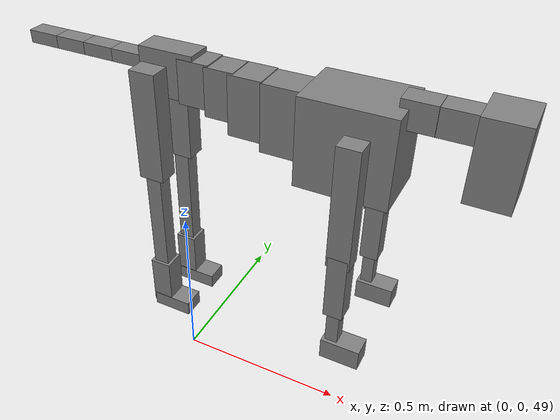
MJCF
<mujoco model="dog">

    <default>
        <joint armature="0.02" stiffness="1" damping="0.2" limited="true"/>
        <geom condim="3" friction="1 0.05 0.05" margin="0.01"/>
        <motor ctrllimited="true" ctrlrange="-1.0 1.0" forcelimited="true" gear="50"/>
    </default>

    <compiler inertiafromgeom="true" angle="radian"/>

    <option timestep="0.016" iterations="50" tolerance="1e-10" solver="Newton" jacobian="dense" cone="pyramidal"/>

    <size nconmax="20000" njmax="60000" nstack="5000000"/>
    <visual>
        <map force="0.1" zfar="30"/>
        <rgba haze="0.15 0.25 0.35 1"/>
        <quality shadowsize="2048"/>
        <global offwidth="800" offheight="800"/>
    </visual>

    <asset>
        <texture type="skybox" builtin="gradient" rgb1="0.3 0.5 0.7" rgb2="0 0 0" width="512" height="512"/>
        <texture name="texplane" type="2d" builtin="checker" rgb1=".2 .3 .4" rgb2=".1 0.15 0.2" width="512" height="512"
                 mark="cross" markrgb=".8 .8 .8"/>
        <texture name="texgeom" type="cube" builtin="flat" mark="cross" width="127" height="1278" rgb1="0.8 0.6 0.4"
                 rgb2="0.8 0.6 0.4" markrgb="1 1 1" random="0.01"/>

        <material name="matplane" reflectance="0.3" texture="texplane" texrepeat="1 1" texuniform="true"/>
        <material name="matgeom" texture="texgeom" texuniform="true" rgba="0.8 0.6 .4 1"/>
    </asset>

    <worldbody>
        <geom name="floor" pos="0 0 0" size="0 0 .25" type="plane" material="matplane" condim="3"/>

        <light directional="false" diffuse=".2 .2 .2" specular="0 0 0" pos="0 0 5" dir="0 0 -1" castshadow="false"/>
        <light mode="targetbodycom" target="torso" directional="false" diffuse=".8 .8 .8" specular="0.3 0.3 0.3"
               pos="0 0 4.0" dir="0 0 -1"/>

        <body name="root" pos="0 0 50">
            <freejoint name="root_1"/>
            <geom type="box" pos="0 0 -0.02" size="0.0774  0.0358  0.063" density="2030"/>

            <body name="spine1" pos="0.054 0 0">
                <joint name="spine1_y" axis="0 1 0" range="0 0.7" limited="true"/>
                <geom type="box" pos="0.02375 0 -0.03" size="0.04375  0.0375  0.05985" density="2030"/>

                <body name="spine2" pos="0.0612 0 0">
                    <joint name="spine2_y" axis="0 1 0" range="-0.15 0.15" limited="true"/>
                    <geom type="box" pos="0.03555  0  -0.04" size="0.04055  0.039  0.06615" density="2030"/>

                    <body name="spine3" pos="0.0730 0 0">
                        <joint name="spine3_y" axis="0 1 0" range="-0.15 0.15" limited="true"/>
                        <geom type="box" pos="0.03555  0  -0.057" size="0.04555  0.0445  0.081" density="2030"/>

                        <body name="spine4" pos="0.0780 0 0">
                            <joint name="spine4_y" axis="0 1 0" range="-0.15 0.15" limited="true"/>
                            <geom type="box" pos="0.05265  0  -0.07" size="0.05265  0.045  0.09135" density="2030"/>

                            <body name="torso" pos="0.1082 0 0">
                                <joint name="torso_y" axis="0 1 0" range="-0.15 0.15" limited="true"/>
                                <geom type="box" pos="0.11925  0  -0.085" size="0.11925  0.085  0.11745"
                                      density="2030"/>

                                <body name="neck1" pos="0.2160  0   0.0180">
                                    <joint name="neck1_y" axis="0 1 0" range="-1.2  -1" limited="true"/>
                                    <geom type="box" pos="0.0423  0  0" size="0.0423  0.03  0.036" density="2325"/>

                                    <body name="neck2" pos="0.0853  0  0">
                                        <joint name="neck2_y" axis="0 1 0" range="0.1  0" limited="true"/>
                                        <geom type="box" pos="0.0423  0  0" size="0.0423  0.03  0.036" density="2325"/>

                                        <body name="head" pos="0.0853  0  0">
                                            <joint name="head_y" axis="0 1 0" range="-0.3  -0.2" limited="true"/>
                                            <geom type="box" pos="0.0531  0  -0.055" size="0.0531  0.06  0.1044"
                                                  density="4030"/>

                                        </body>
                                    </body>
                                </body>

                                <body name="front_shoulder" pos="0.156  0   -0.0480">
                                    <joint name="front_shoulder_y" axis="0 1 0" range="-1 1.5" limited="true"/>
                                    <geom type="box" pos="0 0.13 -0.1371" size="0.0297  0.0254  0.1638" density="1158"/>
                                    <geom type="box" pos="0 -0.13 -0.1371" size="0.0297  0.0254  0.1638"
                                          density="1158"/>

                                    <body name="front_elbow" pos="0  0  -0.2743">
                                        <joint name="front_elbow_y" axis="0 1 0" range="-2 0" limited="true"/>
                                        <geom type="box" pos="0 0.13 -0.0925" size="0.0254  0.0260  0.0925"
                                              density="1081"/>
                                        <geom type="box" pos="0 -0.13 -0.0925" size="0.0254  0.0260  0.0925"
                                              density="1081"/>

                                        <body name="front_wrist" pos="0  0  -0.1849">
                                            <joint name="front_wrist_y" axis="0 1 0" range="-0.2 0" limited="true"/>
                                            <geom type="box" pos="0 0.13 -0.0529" size="0.0167  0.0185  0.0660"
                                                  density="1664"/>
                                            <geom type="box" pos="0 -0.13 -0.0529" size="0.0167  0.0185  0.0660"
                                                  density="1664"/>

                                            <body name="front_finger_end" pos="0  0  -0.1058">
                                                <joint name="front_finger_y" axis="0 1 0" range="-0.4 1"
                                                       limited="true"/>
                                                <geom type="box" pos="0.0287  0.13  -0.0146"
                                                      size="0.0525  0.0287  0.0296" density="1515"/>
                                                <geom type="box" pos="0.0287  -0.13  -0.0146"
                                                      size="0.0525  0.0287  0.0296" density="1515"/>

                                            </body>

                                        </body>
                                    </body>
                                </body>

                            </body>
                        </body>
                    </body>
                </body>
            </body>

            <body name="back_hip" pos="-0.03 0 -0.018">
                <joint name="back_hip_y" axis="0 1 0" range="-1.5 0.3" limited="true"/>
                <geom type="box" pos="0 0.07 -0.1314" size="0.0364  0.0286  0.1542" density="1154"/>
                <geom type="box" pos="0 -0.07 -0.1314" size="0.0364  0.0286  0.1542" density="1154"/>

                <body name="back_knee" pos="0  0  -0.2628">
                    <joint name="back_knee_y" axis="0 1 0" range="0 2.8" limited="true"/>
                    <geom type="box" pos="0 0.07 -0.1630" size="0.0221  0.0218  0.1786" density="1227"/>
                    <geom type="box" pos="0 -0.07 -0.1630" size="0.0221  0.0218  0.1786" density="1227"/>

                    <body name="back_ankle" pos="0  0  -0.3261">
                        <joint name="back_ankle_y" axis="0 1 0" range="-2.2 0" limited="true"/>
                        <geom type="box" pos="0 0.07 -0.0643" size="0.0300  0.0300  0.0756" density="1284"/>
                        <geom type="box" pos="0 -0.07 -0.0643" size="0.0300  0.0300  0.0756" density="1284"/>

                        <body name="back_toe_end" pos="0  0  -0.1286">
                            <joint name="back_toe_y" axis="0 1 0" range="-0.4 1" limited="true"/>
                            <geom type="box" pos="0.0315  0.07  -0.0062" size="0.0578  0.0315  0.0212" density="1515"/>
                            <geom type="box" pos="0.0315  -0.07  -0.0062" size="0.0578  0.0315  0.0212" density="1515"/>

                        </body>
                    </body>
                </body>
            </body>

            <body name="tail1" pos="-0.074 0 -0.006">
                <joint name="tail1_y" axis="0 1 0" range="-0.2 0.2" limited="true"/>
                <geom type="box" pos="-0.0536  0  0" size="0.045  0.025  0.0175" density="1587"/>

                <body name="tail2" pos="-0.09 0 0">
                    <joint name="tail2_y" axis="0 1 0" range="-0.2 0.2" limited="true"/>
                    <geom type="box" pos="-0.0536  0  0" size="0.045  0.025  0.0175" density="1587"/>

                    <body name="tail3" pos="-0.09 0 0">
                        <joint name="tail3_y" axis="0 1 0" range="-0.2 0.2" limited="true"/>
                        <geom type="box" pos="-0.0536  0  0" size="0.045  0.025  0.0175" density="1587"/>

                        <body name="tail4" pos="-0.09 0 0">
                            <joint name="tail4_y" axis="0 1 0" range="-0.2 0.2" limited="true"/>
                            <geom type="box" pos="-0.0536  0  0" size="0.045  0.025  0.0175" density="1587"/>

                        </body>
                    </body>
                </body>
            </body>
        </body>
    </worldbody>

    <actuator>
        <motor joint="spine1_y" forcerange="-150 150     "/>
        <motor joint="spine2_y" forcerange="-150 150     "/>
        <motor joint="spine3_y" forcerange="-150 150     "/>
        <motor joint="spine4_y" forcerange="-150 150     "/>
        <motor joint="torso_y" forcerange="-150 150     "/>
        <motor joint="neck1_y" forcerange="-100 100       "/>
        <motor joint="neck2_y" forcerange="-100 100       "/>
        <motor joint="head_y" forcerange="-150 150       "/>
        <motor joint="front_shoulder_y" forcerange="-139.23 130.10"/>
        <motor joint="front_elbow_y" forcerange="-111.79 177.16"/>
        <motor joint="front_wrist_y" forcerange="-87.48 60.76"/>
        <motor joint="front_finger_y" forcerange="-68.62 44.21"/>
        <motor joint="back_hip_y" forcerange="-205.84 375.06"/>
        <motor joint="back_knee_y" forcerange="-230.35 287.14"/>
        <motor joint="back_angle_y" forcerange="-187.97 192.05"/>
        <motor joint="back_toe_y" forcerange="-128.44 43.93"/>
        <motor joint="tail1_y" forcerange="-50 50     "/>
        <motor joint="tail2_y" forcerange="-50 50     "/>
        <motor joint="tail3_y" forcerange="-50 50     "/>
        <motor joint="tail4_y" forcerange="-50 50     "/>
    </actuator>
</mujoco>
